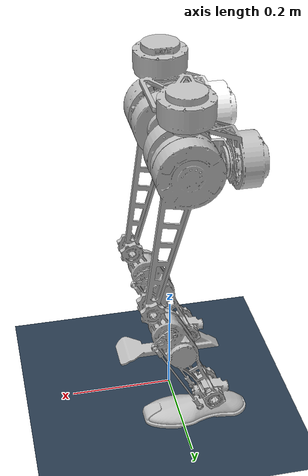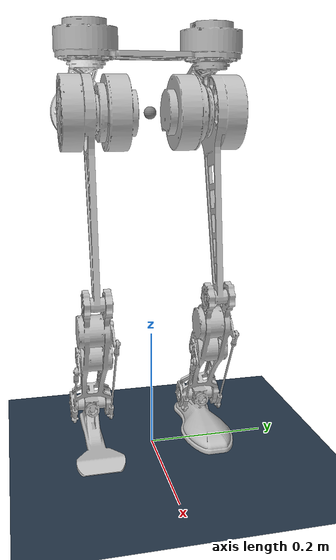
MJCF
<mujoco model="g1 scene">
  <include file="test.xml"/>

  <statistic center="1.0 0.7 1.0" extent="0.8"/>

  <visual>
    <headlight diffuse="0.6 0.6 0.6" ambient="0.1 0.1 0.1" specular="0.9 0.9 0.9"/>
    <rgba haze="0.15 0.25 0.35 1"/>
    <global azimuth="-140" elevation="-20"/>
  </visual>

  <asset>
    <texture type="skybox" builtin="flat" rgb1="0 0 0" rgb2="0 0 0" width="512" height="3072"/>
    <texture type="2d" name="groundplane" builtin="checker" mark="edge" rgb1="0.2 0.3 0.4" rgb2="0.1 0.2 0.3" markrgb="0.8 0.8 0.8" width="300" height="300"/>
    <material name="groundplane" texture="groundplane" texuniform="true" texrepeat="5 5" reflectance="0.2"/>
  </asset>

  <worldbody>
    <light pos="1 0 3.5" dir="0 0 -1" directional="true"/>
    <geom name="floor" size="0 0 0.05" type="plane" material="groundplane"/>
  </worldbody>
</mujoco>

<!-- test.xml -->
<mujoco model="Droid_URDF_20240507">
  <compiler angle="radian" meshdir="meshes/" autolimits="true"/>
  <option timestep="0.001" iterations="50" solver="PGS" gravity="0 0 -9.81">
  </option>
  <size njmax="500" nconmax="100"/>
  <default>
    <joint limited="true"/>
    <motor ctrllimited="true"/>
    <geom condim="4" contype="1" conaffinity="15" solref="0.001 2" friction="0.9 0.2 0.2"/>
    <equality solref="0.001 2"/>
    <default class="visualgeom">
      <geom material="visualgeom" condim="1" contype="0" conaffinity="0"/>
    </default>
    <default class="visualgeom2">
      <geom material="visualgeom2" condim="1" contype="0" conaffinity="0"/>
    </default>
    <default class="obstacle">
      <geom material="obstacle" condim="3" contype="1" conaffinity="15"/>
    </default>
  </default>
  <statistic meansize="0.166938" extent="1.06171" center="0 0 -0.182856"/>
  <asset>
    <texture type="skybox" builtin="gradient" rgb1="0.3 0.5 0.7" rgb2="0 0 0" width="512" height="512"/>
    <texture name="texplane" type="2d" builtin="checker" rgb1=".2 .3 .4" rgb2=".1 0.15 0.2" width="512" height="512" mark="cross" markrgb=".8 .8 .8"/>
    <texture name="texplane2" type="2d" builtin="checker" rgb1="1 0.3137 0.1843" rgb2="0.0 0.30196 0.38039" width="512" height="512" mark="cross" markrgb=".8 .8 .8"/>
    <material name="matplane" reflectance="0." texture="texplane" texrepeat="1 1" texuniform="true"/>
    <material name="matplane2" reflectance="0.1" texture="texplane2" texrepeat="1 1" texuniform="true"/>
    <material name="visualgeom" rgba="0.5 0.9 0.2 1"/>
    <mesh name="Body" file="Body.STL"/>
    <mesh name="Link_hip_l_01" file="Link_hip_l_01.STL"/>
    <mesh name="Link_hip_l_02" file="Link_hip_l_02.STL"/>
    <mesh name="Link_thigh_l_01" file="Link_thigh_l_01.STL"/>
    <mesh name="Link_calf_l_01" file="Link_calf_l_01.STL"/>
    <mesh name="Link_ankle_l_01" file="Link_ankle_l_01.STL"/>
    <mesh name="Link_foot_l_01" file="Link_foot_l_01.STL"/>
    <mesh name="Link_hip_r_01" file="Link_hip_r_01.STL"/>
    <mesh name="Link_hip_r_02" file="Link_hip_r_02.STL"/>
    <mesh name="Link_thigh_r_01" file="Link_thigh_r_01.STL"/>
    <mesh name="Link_calf_r_01" file="Link_calf_r_01.STL"/>
    <mesh name="Link_ankle_r_01" file="Link_ankle_r_01.STL"/>
    <mesh name="Link_foot_r_01" file="Link_foot_r_01.STL"/>
  </asset>
  <worldbody>
    <light directional="true" diffuse=".4 .4 .4" specular="0.1 0.1 0.1" pos="0 0 5.0" dir="0 0 -1" castshadow="false"/>
    <light directional="true" diffuse=".6 .6 .6" specular="0.2 0.2 0.2" pos="0 0 4" dir="0 0 -1"/>
    <geom name="ground" type="plane" size="0 0 1" pos="0.001 0 0" quat="1 0 0 0" material="matplane" condim="1" conaffinity="15"/>
    <body name="Body" pos="0 0 0.57">
      <site name="imu" size="0.01" pos="0.0 0 0.0"/>
      <inertial pos="0.000108123 1.78892e-05 0.106447" quat="0.499742 0.500257 -0.499742 0.500257" mass="3.11602" diaginertia="0.02226 0.02135 0.00192998"/>
      <joint type="slide" axis="1 0 0" limited="false"/>
      <joint type="slide" axis="0 1 0" limited="false"/>
      <joint type="slide" axis="0 0 1" limited="false"/>
      <joint type="ball" limited="false"/>
      <geom type="mesh" contype="0" conaffinity="0" group="1" density="0" rgba="0.752941 0.752941 0.752941 1" mesh="Body"/>
      <geom type="mesh" rgba="0.752941 0.752941 0.752941 1" mesh="Body" class="visualgeom"/>
      <body name="Link_hip_l_01" pos="0 0.1 0">
        <inertial pos="-0.094871 0.00010002 0.0072641" quat="0.937093 0 -0.34908 0" mass="1.01607" diaginertia="0.00206579 0.0019 0.000954212"/>
        <joint name="Joint_hip_l_01" pos="0 0 0" axis="0 0 1" range="-0.5 0.5"/>
        <geom type="mesh" contype="0" conaffinity="0" group="1" density="0" rgba="0.75294 0.75294 0.75294 1" mesh="Link_hip_l_01"/>
        <geom type="mesh" rgba="0.75294 0.75294 0.75294 1" mesh="Link_hip_l_01" class="visualgeom"/>
        <body name="Link_hip_l_02">
          <inertial pos="-0.0043369 -0.040291 -3.3904e-05" quat="0.446631 0.446631 0.548198 0.548198" mass="1.5821" diaginertia="0.00275159 0.00199 0.00148841"/>
          <joint name="Joint_hip_l_02" pos="0 0 0" axis="1 0 0" range="-0.5 0.5"/>
          <geom type="mesh" contype="0" conaffinity="0" group="1" density="0" rgba="0.75294 0.75294 0.75294 1" mesh="Link_hip_l_02"/>
          <geom type="mesh" rgba="0.75294 0.75294 0.75294 1" mesh="Link_hip_l_02" class="visualgeom"/>
          <body name="Link_thigh_l_01" quat="0.995004 0 -0.0998334 0">
            <inertial pos="8.6643e-05 0.019087 -0.015695" quat="0.706924 0.0278118 -0.0290722 0.706144" mass="1.6479" diaginertia="0.00781032 0.00703002 0.00156966"/>
            <joint name="Joint_thigh_l_01" pos="0 0 0" axis="0 1 0" range="-0.8 0.8"/>
            <geom type="mesh" contype="0" conaffinity="0" group="1" density="0" rgba="0.75294 0.75294 0.75294 1" mesh="Link_thigh_l_01"/>
            <geom type="mesh" rgba="0.75294 0.75294 0.75294 1" mesh="Link_thigh_l_01" class="visualgeom"/>
            <body name="Link_calf_l_01" pos="0 0 -0.3" quat="0.939373 0 0.342898 0">
              <inertial pos="0.0018402 0.0001044 -0.10338" quat="0.999902 0.00254967 0.0134844 -0.00283887" mass="1.3801" diaginertia="0.00669432 0.00655015 0.000755531"/>
              <joint name="Joint_calf_l_01" pos="0 0 0" axis="0 1 0" range="-0.7 1"/>
              <geom type="mesh" contype="0" conaffinity="0" group="1" density="0" rgba="0.75294 0.75294 0.75294 1" mesh="Link_calf_l_01"/>
              <geom type="mesh" rgba="0.75294 0.75294 0.75294 1" mesh="Link_calf_l_01" class="visualgeom"/>
              <body name="Link_ankle_l_01" pos="0 0 -0.25" quat="0.968912 0 -0.247404 0">
                <inertial pos="0.0201654 -8.88256e-07 -0.0261254" quat="-3.72342e-05 0.735515 -4.26278e-05 0.677509" mass="0.439599" diaginertia="0.00103592 0.00101331 0.000232493"/>
                <joint name="Joint_ankle_l_01" pos="0 0 0" axis="0 1 0" range="-1 1"/>
                <geom type="mesh" contype="0" conaffinity="0" group="1" density="0" rgba="0.75294 0.75294 0.75294 1" mesh="Link_ankle_l_01"/>
                <geom type="mesh" rgba="0.75294 0.75294 0.75294 1" mesh="Link_ankle_l_01" class="visualgeom"/>
                <geom type="mesh" contype="0" conaffinity="0" group="1" density="0" rgba="0.75294 0.75294 0.75294 1" mesh="Link_foot_l_01"/>
                <geom type="mesh" rgba="0.75294 0.75294 0.75294 1" mesh="Link_foot_l_01"/>
              </body>
            </body>
          </body>
        </body>
      </body>
      <body name="Link_hip_r_01" pos="0 -0.1 0">
        <inertial pos="-0.094871 -0.00010002 0.0072641" quat="0.937093 0 -0.34908 0" mass="1.01607" diaginertia="0.00206579 0.0019 0.000954212"/>
        <joint name="Joint_hip_r_01" pos="0 0 0" axis="0 0 1" range="-0.5 0.5"/>
        <geom type="mesh" contype="0" conaffinity="0" group="1" density="0" rgba="1 1 1 1" mesh="Link_hip_r_01"/>
        <geom type="mesh" rgba="1 1 1 1" mesh="Link_hip_r_01" class="visualgeom"/>
        <body name="Link_hip_r_02">
          <inertial pos="-0.0043369 0.040291 3.3928e-05" quat="0.548198 0.548198 0.446631 0.446631" mass="1.5821" diaginertia="0.00275159 0.00199 0.00148841"/>
          <joint name="Joint_hip_r_02" pos="0 0 0" axis="1 0 0" range="-0.5 0.5"/>
          <geom type="mesh" contype="0" conaffinity="0" group="1" density="0" rgba="0.75294 0.75294 0.75294 1" mesh="Link_hip_r_02"/>
          <geom type="mesh" rgba="0.75294 0.75294 0.75294 1" mesh="Link_hip_r_02" class="visualgeom"/>
          <body name="Link_thigh_r_01" quat="0.995004 0 -0.0998334 0">
            <inertial pos="-8.6643e-05 -0.019087 -0.015695" quat="0.706924 -0.0278118 0.0290722 0.706144" mass="1.6479" diaginertia="0.00781032 0.00703002 0.00156966"/>
            <joint name="Joint_thigh_r_01" pos="0 0 0" axis="0 1 0" range="-0.8 0.8"/>
            <geom type="mesh" contype="0" conaffinity="0" group="1" density="0" rgba="0.75294 0.75294 0.75294 1" mesh="Link_thigh_r_01"/>
            <geom type="mesh" rgba="0.75294 0.75294 0.75294 1" mesh="Link_thigh_r_01" class="visualgeom"/>
            <body name="Link_calf_r_01" pos="0 0 -0.3" quat="0.939373 0 0.342898 0">
              <inertial pos="0.0018402 0.0001044 -0.10338" quat="0.999902 0.00254967 0.0134844 -0.00283887" mass="1.3801" diaginertia="0.00669432 0.00655015 0.000755531"/>
              <joint name="Joint_calf_r_01" pos="0 0 0" axis="0 1 0" range="-0.7 1"/>
              <geom type="mesh" contype="0" conaffinity="0" group="1" density="0" rgba="0.75294 0.75294 0.75294 1" mesh="Link_calf_r_01"/>
              <geom type="mesh" rgba="0.75294 0.75294 0.75294 1" mesh="Link_calf_r_01" class="visualgeom"/>
              <body name="Link_ankle_r_01" pos="0 0 -0.25" quat="0.968912 0 -0.247404 0">
                <inertial pos="0.0201654 -8.68087e-07 -0.0261254" quat="-4.03802e-05 0.735515 -4.62295e-05 0.677509" mass="0.439599" diaginertia="0.00103592 0.00101331 0.000232493"/>
                <joint name="Joint_ankle_r_01" pos="0 0 0" axis="0 1 0" range="-1 1"/>
                <geom type="mesh" contype="0" conaffinity="0" group="1" density="0" rgba="0.75294 0.75294 0.75294 1" mesh="Link_ankle_r_01"/>
                <geom type="mesh" rgba="0.75294 0.75294 0.75294 1" mesh="Link_ankle_r_01" class="visualgeom"/>
                <geom type="mesh" contype="0" conaffinity="0" group="1" density="0" rgba="0.75294 0.75294 0.75294 1" mesh="Link_foot_r_01"/>
                <geom type="mesh" rgba="0.75294 0.75294 0.75294 1" mesh="Link_foot_r_01"/>
              </body>
            </body>
          </body>
        </body>
      </body>
    </body>
  </worldbody>
  <actuator>
    <motor name="Joint_hip_l_01" joint="Joint_hip_l_01" gear="1" ctrllimited="true" ctrlrange="-100 100"/>
    <motor name="Joint_hip_l_02" joint="Joint_hip_l_02" gear="1" ctrllimited="true" ctrlrange="-100 100"/>
    <motor name="Joint_thigh_l_01" joint="Joint_thigh_l_01" gear="1" ctrllimited="true" ctrlrange="-100 100"/>
    <motor name="Joint_calf_l_01" joint="Joint_calf_l_01" gear="1" ctrllimited="true" ctrlrange="-100 100"/>
    <motor  name="Joint_ankle_l_01" joint="Joint_ankle_l_01" gear="1" ctrllimited='true' ctrlrange="-50 50"/>
    <motor name="Joint_hip_r_01" joint="Joint_hip_r_01" gear="1" ctrllimited="true" ctrlrange="-100 100"/>
    <motor name="Joint_hip_r_02" joint="Joint_hip_r_02" gear="1" ctrllimited="true" ctrlrange="-100 100"/>
    <motor name="Joint_thigh_r_01" joint="Joint_thigh_r_01" gear="1" ctrllimited="true" ctrlrange="-100 100"/>
    <motor name="Joint_calf_r_01" joint="Joint_calf_r_01" gear="1" ctrllimited="true" ctrlrange="-100 100"/>
    <motor  name="Joint_ankle_r_01" joint="Joint_ankle_r_01" gear="1" ctrllimited='true' ctrlrange="-50 50"/>
  </actuator>
  <sensor>
    <actuatorpos name="left_hip_yaw_pos" actuator="Joint_hip_l_01" user="13"/>
    <actuatorpos name="left_hip_roll_pos" actuator="Joint_hip_l_02" user="13"/>
    <actuatorpos name="left_hip_pitch_pos" actuator="Joint_thigh_l_01" user="13"/>
    <actuatorpos name="left_knee_pos" actuator="Joint_calf_l_01" user="13"/>
    <actuatorpos name="left_ankle_pos" actuator="Joint_ankle_l_01" user="13"/>
    <actuatorpos name="right_hip_yaw_pos" actuator="Joint_hip_r_01" user="13"/>
    <actuatorpos name="right_hip_roll_pos" actuator="Joint_hip_r_02" user="13"/>
    <actuatorpos name="right_hip_pitch_pos" actuator="Joint_thigh_r_01" user="13"/>
    <actuatorpos name="right_knee_pos" actuator="Joint_calf_r_01" user="13"/>
    <actuatorpos name="right_ankle_pos" actuator="Joint_ankle_r_01" user="13"/>
    <actuatorvel name="left_hip_yaw_vel" actuator="Joint_hip_l_01" user="13"/>
    <actuatorvel name="left_hip_roll_vel" actuator="Joint_hip_l_02" user="13"/>
    <actuatorvel name="left_hip_pitch_vel" actuator="Joint_thigh_l_01" user="13"/>
    <actuatorvel name="left_knee_vel" actuator="Joint_calf_l_01" user="13"/>
    <actuatorvel name="left_ankle_vel" actuator="Joint_ankle_l_01" user="13"/>
    <actuatorvel name="right_hip_yaw_vel" actuator="Joint_hip_r_01" user="13"/>
    <actuatorvel name="right_hip_roll_vel" actuator="Joint_hip_r_02" user="13"/>
    <actuatorvel name="right_hip_pitch_vel" actuator="Joint_thigh_r_01" user="13"/>
    <actuatorvel name="right_knee_vel" actuator="Joint_calf_r_01" user="13"/>
    <actuatorvel name="right_ankle_vel" actuator="Joint_ankle_r_01" user="13"/>
    <actuatorfrc name="left_hip_yaw_torque" actuator="Joint_hip_l_01" user="13"/>
    <actuatorfrc name="left_hip_roll_torque" actuator="Joint_hip_l_02" user="13"/>
    <actuatorfrc name="left_hip_pitch_torque" actuator="Joint_thigh_l_01" user="13"/>
    <actuatorfrc name="left_knee_torque" actuator="Joint_calf_l_01" user="13"/>
    <actuatorfrc name="left_ankle_torque" actuator="Joint_ankle_l_01" user="13"/>
    <actuatorfrc name="right_hip_yaw_torque" actuator="Joint_hip_r_01" user="13"/>
    <actuatorfrc name="right_hip_roll_torque" actuator="Joint_hip_r_02" user="13"/>
    <actuatorfrc name="right_hip_pitch_torque" actuator="Joint_thigh_r_01" user="13"/>
    <actuatorfrc name="right_knee_torque" actuator="Joint_calf_r_01" user="13"/>
    <actuatorfrc name="right_ankle_torque" actuator="Joint_ankle_r_01" user="13"/>
    <framequat name="orientation" objtype="site" noise="0.001" objname="imu"/>
    <framepos name="position" objtype="site" noise="0.001" objname="imu"/>
    <gyro name="angular-velocity" site="imu" noise="0.005" cutoff="34.9"/>
    <velocimeter name="linear-velocity" site="imu" noise="0.001" cutoff="30"/>
    <accelerometer name="linear-acceleration" site="imu" noise="0.005" cutoff="157"/>
    <magnetometer name="magnetometer" site="imu"/>
  </sensor>
</mujoco>
